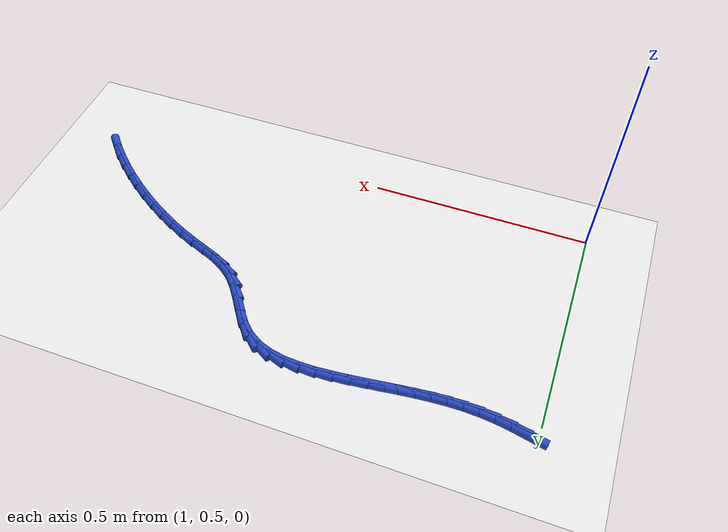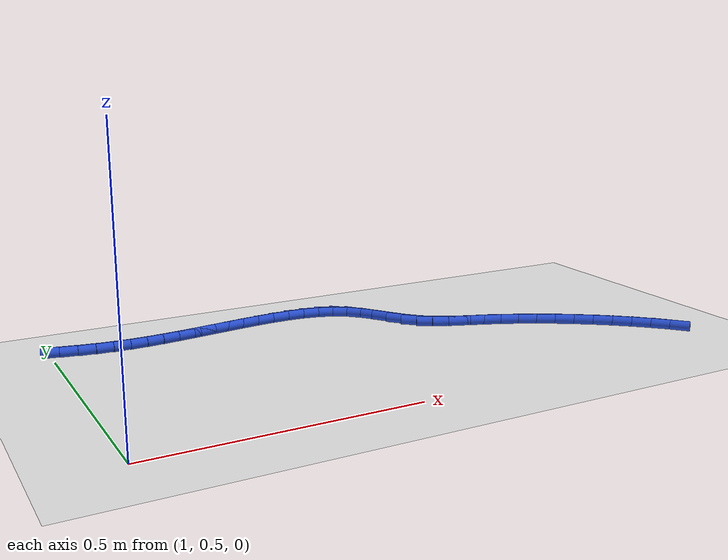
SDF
<sdf version="1.6">
 <world name="default">
  <model name="ground_plane">
   <static>1</static>
   <link name="link">
    <collision name="collision">
     <geometry><plane><normal>0 0 1</normal><size>100 100</size></plane></geometry>
     <surface><friction><ode><mu>100</mu><mu2>50</mu2></ode></friction></surface>
    </collision>
    <visual name="visual">
     <cast_shadows>0</cast_shadows>
     <geometry><plane><normal>0 0 1</normal><size>100 100</size></plane></geometry>
     <material>
      <script><uri>file://media/materials/scripts/gazebo.material</uri><name>Gazebo/WhiteGlow</name></script>
     </material>
    </visual>
   </link>
  </model>
  <model name="line">
   <link name="link_53">
    <pose>1.020799490065733 1.028812017248633 0.01 0 1.57 -0.21063804163629843</pose>
    <collision name="collision">
     <geometry><cylinder><radius>0.01</radius><length>0.08</length></cylinder></geometry>
    </collision>
    <visual name="visual">
     <material>
      <script><name>Gazebo/Blue</name><uri>file://media/materials/scripts/gazebo.material</uri></script>
     </material>
     <geometry><cylinder><radius>0.01</radius><length>0.08</length></cylinder></geometry>
    </visual>
   </link>
   <link name="link_54">
    <pose>1.0539483544263364 1.0217244730499042 0.01 0 1.57 -0.1638226156804178</pose>
    <collision name="collision">
     <geometry><cylinder><radius>0.01</radius><length>0.08</length></cylinder></geometry>
    </collision>
    <visual name="visual">
     <material>
      <script><name>Gazebo/Blue</name><uri>file://media/materials/scripts/gazebo.material</uri></script>
     </material>
     <geometry><cylinder><radius>0.01</radius><length>0.08</length></cylinder></geometry>
    </visual>
   </link>
   <link name="link_55">
    <pose>1.086883224689553 1.0162802049427844 0.01 0 1.57 -0.10352199797164098</pose>
    <collision name="collision">
     <geometry><cylinder><radius>0.01</radius><length>0.08</length></cylinder></geometry>
    </collision>
    <visual name="visual">
     <material>
      <script><name>Gazebo/Blue</name><uri>file://media/materials/scripts/gazebo.material</uri></script>
     </material>
     <geometry><cylinder><radius>0.01</radius><length>0.08</length></cylinder></geometry>
    </visual>
   </link>
   <link name="link_56">
    <pose>1.119546195399658 1.0128867379117057 0.01 0 1.57 -0.04022461310720023</pose>
    <collision name="collision">
     <geometry><cylinder><radius>0.01</radius><length>0.08</length></cylinder></geometry>
    </collision>
    <visual name="visual">
     <material>
      <script><name>Gazebo/Blue</name><uri>file://media/materials/scripts/gazebo.material</uri></script>
     </material>
     <geometry><cylinder><radius>0.01</radius><length>0.08</length></cylinder></geometry>
    </visual>
   </link>
   <link name="link_57">
    <pose>1.151974073827715 1.011581635078166 0.01 0 1.57 0.014464242559410612</pose>
    <collision name="collision">
     <geometry><cylinder><radius>0.01</radius><length>0.08</length></cylinder></geometry>
    </collision>
    <visual name="visual">
     <material>
      <script><name>Gazebo/Blue</name><uri>file://media/materials/scripts/gazebo.material</uri></script>
     </material>
     <geometry><cylinder><radius>0.01</radius><length>0.08</length></cylinder></geometry>
    </visual>
   </link>
   <link name="link_58">
    <pose>1.1842941162014746 1.0120491526148319 0.01 0 1.57 0.05899436904600479</pose>
    <collision name="collision">
     <geometry><cylinder><radius>0.01</radius><length>0.08</length></cylinder></geometry>
    </collision>
    <visual name="visual">
     <material>
      <script><name>Gazebo/Blue</name><uri>file://media/materials/scripts/gazebo.material</uri></script>
     </material>
     <geometry><cylinder><radius>0.01</radius><length>0.08</length></cylinder></geometry>
    </visual>
   </link>
   <link name="link_59">
    <pose>1.2166371930566153 1.0139594286751834 0.01 0 1.57 0.09276235101335384</pose>
    <collision name="collision">
     <geometry><cylinder><radius>0.01</radius><length>0.08</length></cylinder></geometry>
    </collision>
    <visual name="visual">
     <material>
      <script><name>Gazebo/Blue</name><uri>file://media/materials/scripts/gazebo.material</uri></script>
     </material>
     <geometry><cylinder><radius>0.01</radius><length>0.08</length></cylinder></geometry>
    </visual>
   </link>
   <link name="link_60">
    <pose>1.249134174928815 1.016982601412701 0.01 0 1.57 0.11558992344600376</pose>
    <collision name="collision">
     <geometry><cylinder><radius>0.01</radius><length>0.08</length></cylinder></geometry>
    </collision>
    <visual name="visual">
     <material>
      <script><name>Gazebo/Blue</name><uri>file://media/materials/scripts/gazebo.material</uri></script>
     </material>
     <geometry><cylinder><radius>0.01</radius><length>0.08</length></cylinder></geometry>
    </visual>
   </link>
   <link name="link_61">
    <pose>1.2819159323537523 1.0207888089808654 0.01 0 1.57 0.12760744909594707</pose>
    <collision name="collision">
     <geometry><cylinder><radius>0.01</radius><length>0.08</length></cylinder></geometry>
    </collision>
    <visual name="visual">
     <material>
      <script><name>Gazebo/Blue</name><uri>file://media/materials/scripts/gazebo.material</uri></script>
     </material>
     <geometry><cylinder><radius>0.01</radius><length>0.08</length></cylinder></geometry>
    </visual>
   </link>
   <link name="link_62">
    <pose>1.3151133358671043 1.0250481895331567 0.01 0 1.57 0.1291579099587101</pose>
    <collision name="collision">
     <geometry><cylinder><radius>0.01</radius><length>0.08</length></cylinder></geometry>
    </collision>
    <visual name="visual">
     <material>
      <script><name>Gazebo/Blue</name><uri>file://media/materials/scripts/gazebo.material</uri></script>
     </material>
     <geometry><cylinder><radius>0.01</radius><length>0.08</length></cylinder></geometry>
    </visual>
   </link>
   <link name="link_63">
    <pose>1.3488572560045509 1.029430881223056 0.01 0 1.57 0.12073422066357245</pose>
    <collision name="collision">
     <geometry><cylinder><radius>0.01</radius><length>0.08</length></cylinder></geometry>
    </collision>
    <visual name="visual">
     <material>
      <script><name>Gazebo/Blue</name><uri>file://media/materials/scripts/gazebo.material</uri></script>
     </material>
     <geometry><cylinder><radius>0.01</radius><length>0.08</length></cylinder></geometry>
    </visual>
   </link>
   <link name="link_64">
    <pose>1.383278563301769 1.033607022204043 0.01 0 1.57 0.10286352939975</pose>
    <collision name="collision">
     <geometry><cylinder><radius>0.01</radius><length>0.08</length></cylinder></geometry>
    </collision>
    <visual name="visual">
     <material>
      <script><name>Gazebo/Blue</name><uri>file://media/materials/scripts/gazebo.material</uri></script>
     </material>
     <geometry><cylinder><radius>0.01</radius><length>0.08</length></cylinder></geometry>
    </visual>
   </link>
   <link name="link_65">
    <pose>1.418502255923918 1.037243088893848 0.01 0 1.57 0.07096598074154586</pose>
    <collision name="collision">
     <geometry><cylinder><radius>0.01</radius><length>0.08</length></cylinder></geometry>
    </collision>
    <visual name="visual">
     <material>
      <script><name>Gazebo/Blue</name><uri>file://media/materials/scripts/gazebo.material</uri></script>
     </material>
     <geometry><cylinder><radius>0.01</radius><length>0.08</length></cylinder></geometry>
    </visual>
   </link>
   <link name="link_66">
    <pose>1.4543046116999094 1.0397881120095163 0.01 0 1.57 0.015924536040777683</pose>
    <collision name="collision">
     <geometry><cylinder><radius>0.01</radius><length>0.08</length></cylinder></geometry>
    </collision>
    <visual name="visual">
     <material>
      <script><name>Gazebo/Blue</name><uri>file://media/materials/scripts/gazebo.material</uri></script>
     </material>
     <geometry><cylinder><radius>0.01</radius><length>0.08</length></cylinder></geometry>
    </visual>
   </link>
   <link name="link_67">
    <pose>1.4899234643043502 1.0403553736631455 0.01 0 1.57 -0.06707057663341108</pose>
    <collision name="collision">
     <geometry><cylinder><radius>0.01</radius><length>0.08</length></cylinder></geometry>
    </collision>
    <visual name="visual">
     <material>
      <script><name>Gazebo/Blue</name><uri>file://media/materials/scripts/gazebo.material</uri></script>
     </material>
     <geometry><cylinder><radius>0.01</radius><length>0.08</length></cylinder></geometry>
    </visual>
   </link>
   <link name="link_68">
    <pose>1.524550571003348 1.0380294248723434 0.01 0 1.57 -0.18474530111922033</pose>
    <collision name="collision">
     <geometry><cylinder><radius>0.01</radius><length>0.08</length></cylinder></geometry>
    </collision>
    <visual name="visual">
     <material>
      <script><name>Gazebo/Blue</name><uri>file://media/materials/scripts/gazebo.material</uri></script>
     </material>
     <geometry><cylinder><radius>0.01</radius><length>0.08</length></cylinder></geometry>
    </visual>
   </link>
   <link name="link_69">
    <pose>1.5573776890630096 1.031894816654718 0.01 0 1.57 -0.34496713228594533</pose>
    <collision name="collision">
     <geometry><cylinder><radius>0.01</radius><length>0.08</length></cylinder></geometry>
    </collision>
    <visual name="visual">
     <material>
      <script><name>Gazebo/Blue</name><uri>file://media/materials/scripts/gazebo.material</uri></script>
     </material>
     <geometry><cylinder><radius>0.01</radius><length>0.08</length></cylinder></geometry>
    </visual>
   </link>
   <link name="link_70">
    <pose>1.587596575749442 1.0210361000278765 0.01 0 1.57 -0.5517762470682908</pose>
    <collision name="collision">
     <geometry><cylinder><radius>0.01</radius><length>0.08</length></cylinder></geometry>
    </collision>
    <visual name="visual">
     <material>
      <script><name>Gazebo/Blue</name><uri>file://media/materials/scripts/gazebo.material</uri></script>
     </material>
     <geometry><cylinder><radius>0.01</radius><length>0.08</length></cylinder></geometry>
    </visual>
   </link>
   <link name="link_71">
    <pose>1.6143989884810848 1.0045378262227045 0.01 0 1.57 -0.7742431588048644</pose>
    <collision name="collision">
     <geometry><cylinder><radius>0.01</radius><length>0.08</length></cylinder></geometry>
    </collision>
    <visual name="visual">
     <material>
      <script><name>Gazebo/Blue</name><uri>file://media/materials/scripts/gazebo.material</uri></script>
     </material>
     <geometry><cylinder><radius>0.01</radius><length>0.08</length></cylinder></geometry>
    </visual>
   </link>
   <link name="link_72">
    <pose>1.637386166864286 0.9820578551387614 0.01 0 1.57 -0.9163974651949578</pose>
    <collision name="collision">
     <geometry><cylinder><radius>0.01</radius><length>0.08</length></cylinder></geometry>
    </collision>
    <visual name="visual">
     <material>
      <script><name>Gazebo/Blue</name><uri>file://media/materials/scripts/gazebo.material</uri></script>
     </material>
     <geometry><cylinder><radius>0.01</radius><length>0.08</length></cylinder></geometry>
    </visual>
   </link>
   <link name="link_73">
    <pose>1.6577620693705195 0.9554979846195716 0.01 0 1.57 -0.9689745222730514</pose>
    <collision name="collision">
     <geometry><cylinder><radius>0.01</radius><length>0.08</length></cylinder></geometry>
    </collision>
    <visual name="visual">
     <material>
      <script><name>Gazebo/Blue</name><uri>file://media/materials/scripts/gazebo.material</uri></script>
     </material>
     <geometry><cylinder><radius>0.01</radius><length>0.08</length></cylinder></geometry>
    </visual>
   </link>
   <link name="link_74">
    <pose>1.6771227201328682 0.9273089366111642 0.01 0 1.57 -0.9410976311905007</pose>
    <collision name="collision">
     <geometry><cylinder><radius>0.01</radius><length>0.08</length></cylinder></geometry>
    </collision>
    <visual name="visual">
     <material>
      <script><name>Gazebo/Blue</name><uri>file://media/materials/scripts/gazebo.material</uri></script>
     </material>
     <geometry><cylinder><radius>0.01</radius><length>0.08</length></cylinder></geometry>
    </visual>
   </link>
   <link name="link_75">
    <pose>1.6970641432844162 0.8999414330595716 0.01 0 1.57 -0.8281522194897697</pose>
    <collision name="collision">
     <geometry><cylinder><radius>0.01</radius><length>0.08</length></cylinder></geometry>
    </collision>
    <visual name="visual">
     <material>
      <script><name>Gazebo/Blue</name><uri>file://media/materials/scripts/gazebo.material</uri></script>
     </material>
     <geometry><cylinder><radius>0.01</radius><length>0.08</length></cylinder></geometry>
    </visual>
   </link>
   <link name="link_76">
    <pose>1.7191823629582477 0.875846195910824 0.01 0 1.57 -0.6412500001980409</pose>
    <collision name="collision">
     <geometry><cylinder><radius>0.01</radius><length>0.08</length></cylinder></geometry>
    </collision>
    <visual name="visual">
     <material>
      <script><name>Gazebo/Blue</name><uri>file://media/materials/scripts/gazebo.material</uri></script>
     </material>
     <geometry><cylinder><radius>0.01</radius><length>0.08</length></cylinder></geometry>
    </visual>
   </link>
   <link name="link_77">
    <pose>1.744701683008231 0.8567963152979005 0.01 0 1.57 -0.48511577942105033</pose>
    <collision name="collision">
     <geometry><cylinder><radius>0.01</radius><length>0.08</length></cylinder></geometry>
    </collision>
    <visual name="visual">
     <material>
      <script><name>Gazebo/Blue</name><uri>file://media/materials/scripts/gazebo.material</uri></script>
     </material>
     <geometry><cylinder><radius>0.01</radius><length>0.08</length></cylinder></geometry>
    </visual>
   </link>
   <link name="link_78">
    <pose>1.7732895438286342 0.841726778974668 0.01 0 1.57 -0.39521307242148573</pose>
    <collision name="collision">
     <geometry><cylinder><radius>0.01</radius><length>0.08</length></cylinder></geometry>
    </collision>
    <visual name="visual">
     <material>
      <script><name>Gazebo/Blue</name><uri>file://media/materials/scripts/gazebo.material</uri></script>
     </material>
     <geometry><cylinder><radius>0.01</radius><length>0.08</length></cylinder></geometry>
    </visual>
   </link>
   <link name="link_79">
    <pose>1.8042058587016687 0.8288296683989094 0.01 0 1.57 -0.36799917022150597</pose>
    <collision name="collision">
     <geometry><cylinder><radius>0.01</radius><length>0.08</length></cylinder></geometry>
    </collision>
    <visual name="visual">
     <material>
      <script><name>Gazebo/Blue</name><uri>file://media/materials/scripts/gazebo.material</uri></script>
     </material>
     <geometry><cylinder><radius>0.01</radius><length>0.08</length></cylinder></geometry>
    </visual>
   </link>
   <link name="link_80">
    <pose>1.8367105395071817 0.8162970624719484 0.01 0 1.57 -0.39470509530401404</pose>
    <collision name="collision">
     <geometry><cylinder><radius>0.01</radius><length>0.08</length></cylinder></geometry>
    </collision>
    <visual name="visual">
     <material>
      <script><name>Gazebo/Blue</name><uri>file://media/materials/scripts/gazebo.material</uri></script>
     </material>
     <geometry><cylinder><radius>0.01</radius><length>0.08</length></cylinder></geometry>
    </visual>
   </link>
   <link name="link_81">
    <pose>1.8700810052093995 0.8023960706970212 0.01 0 1.57 -0.4410428746394001</pose>
    <collision name="collision">
     <geometry><cylinder><radius>0.01</radius><length>0.08</length></cylinder></geometry>
    </collision>
    <visual name="visual">
     <material>
      <script><name>Gazebo/Blue</name><uri>file://media/materials/scripts/gazebo.material</uri></script>
     </material>
     <geometry><cylinder><radius>0.01</radius><length>0.08</length></cylinder></geometry>
    </visual>
   </link>
   <link name="link_82">
    <pose>1.9038431029294347 0.7864584980878045 0.01 0 1.57 -0.4851297863235632</pose>
    <collision name="collision">
     <geometry><cylinder><radius>0.01</radius><length>0.08</length></cylinder></geometry>
    </collision>
    <visual name="visual">
     <material>
      <script><name>Gazebo/Blue</name><uri>file://media/materials/scripts/gazebo.material</uri></script>
     </material>
     <geometry><cylinder><radius>0.01</radius><length>0.08</length></cylinder></geometry>
    </visual>
   </link>
   <link name="link_83">
    <pose>1.9377072284513568 0.7686070750320387 0.01 0 1.57 -0.5275555047467497</pose>
    <collision name="collision">
     <geometry><cylinder><radius>0.01</radius><length>0.08</length></cylinder></geometry>
    </collision>
    <visual name="visual">
     <material>
      <script><name>Gazebo/Blue</name><uri>file://media/materials/scripts/gazebo.material</uri></script>
     </material>
     <geometry><cylinder><radius>0.01</radius><length>0.08</length></cylinder></geometry>
    </visual>
   </link>
   <link name="link_84">
    <pose>1.971388153850523 0.7489832875116139 0.01 0 1.57 -0.5692847325259838</pose>
    <collision name="collision">
     <geometry><cylinder><radius>0.01</radius><length>0.08</length></cylinder></geometry>
    </collision>
    <visual name="visual">
     <material>
      <script><name>Gazebo/Blue</name><uri>file://media/materials/scripts/gazebo.material</uri></script>
     </material>
     <geometry><cylinder><radius>0.01</radius><length>0.08</length></cylinder></geometry>
    </visual>
   </link>
   <link name="link_85">
    <pose>2.004600651202291 0.7277286215084185 0.01 0 1.57 -0.6111986739123142</pose>
    <collision name="collision">
     <geometry><cylinder><radius>0.01</radius><length>0.08</length></cylinder></geometry>
    </collision>
    <visual name="visual">
     <material>
      <script><name>Gazebo/Blue</name><uri>file://media/materials/scripts/gazebo.material</uri></script>
     </material>
     <geometry><cylinder><radius>0.01</radius><length>0.08</length></cylinder></geometry>
    </visual>
   </link>
   <link name="link_86">
    <pose>2.037059492582018 0.7049845630043429 0.01 0 1.57 -0.6541494897330753</pose>
    <collision name="collision">
     <geometry><cylinder><radius>0.01</radius><length>0.08</length></cylinder></geometry>
    </collision>
    <visual name="visual">
     <material>
      <script><name>Gazebo/Blue</name><uri>file://media/materials/scripts/gazebo.material</uri></script>
     </material>
     <geometry><cylinder><radius>0.01</radius><length>0.08</length></cylinder></geometry>
    </visual>
   </link>
   <link name="link_87">
    <pose>2.0684794500650603 0.6808925979812757 0.01 0 1.57 -0.6990079537516871</pose>
    <collision name="collision">
     <geometry><cylinder><radius>0.01</radius><length>0.08</length></cylinder></geometry>
    </collision>
    <visual name="visual">
     <material>
      <script><name>Gazebo/Blue</name><uri>file://media/materials/scripts/gazebo.material</uri></script>
     </material>
     <geometry><cylinder><radius>0.01</radius><length>0.08</length></cylinder></geometry>
    </visual>
   </link>
   <link name="link_88">
    <pose>2.0985752957267754 0.6555942124211066 0.01 0 1.57 -0.7467084090026327</pose>
    <collision name="collision">
     <geometry><cylinder><radius>0.01</radius><length>0.08</length></cylinder></geometry>
    </collision>
    <visual name="visual">
     <material>
      <script><name>Gazebo/Blue</name><uri>file://media/materials/scripts/gazebo.material</uri></script>
     </material>
     <geometry><cylinder><radius>0.01</radius><length>0.08</length></cylinder></geometry>
    </visual>
   </link>
   <link name="link_89">
    <pose>2.127061801642521 0.6292308923057248 0.01 0 1.57 -0.7982936459995622</pose>
    <collision name="collision">
     <geometry><cylinder><radius>0.01</radius><length>0.08</length></cylinder></geometry>
    </collision>
    <visual name="visual">
     <material>
      <script><name>Gazebo/Blue</name><uri>file://media/materials/scripts/gazebo.material</uri></script>
     </material>
     <geometry><cylinder><radius>0.01</radius><length>0.08</length></cylinder></geometry>
    </visual>
   </link>
   <link name="link_90">
    <pose>2.1536537398876536 0.6019441236170201 0.01 0 1.57 -0.8549604341104302</pose>
    <collision name="collision">
     <geometry><cylinder><radius>0.01</radius><length>0.08</length></cylinder></geometry>
    </collision>
    <visual name="visual">
     <material>
      <script><name>Gazebo/Blue</name><uri>file://media/materials/scripts/gazebo.material</uri></script>
     </material>
     <geometry><cylinder><radius>0.01</radius><length>0.08</length></cylinder></geometry>
    </visual>
   </link>
  </model>
 </world>
</sdf>
